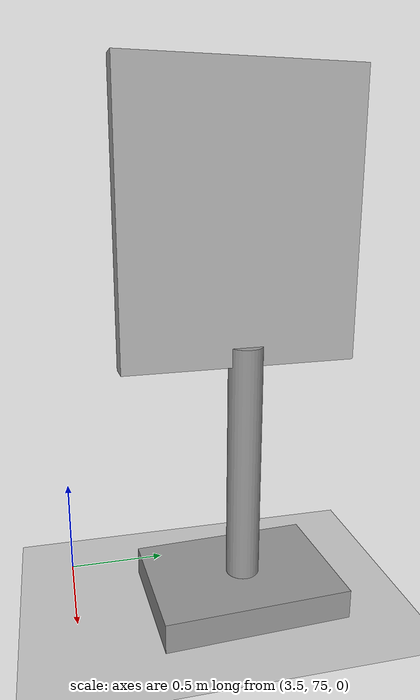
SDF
<sdf version="1.7">
 <world name="default">
  <model name="ground_plane">
   <static>1</static>
   <link name="link">
    <collision name="collision">
     <geometry><plane><normal>0 0 1</normal><size>100 100</size></plane></geometry>
     <surface>
      <contact><collide_bitmask>65535</collide_bitmask></contact>
      <friction><ode><mu>100</mu><mu2>50</mu2></ode></friction>
     </surface>
    </collision>
    <visual name="visual">
     <cast_shadows>0</cast_shadows>
     <geometry><plane><normal>0 0 1</normal><size>100 100</size></plane></geometry>
     <material>
      <script><uri>file://media/materials/scripts/gazebo.material</uri><name>Gazebo/Grey</name></script>
     </material>
    </visual>
   </link>
  </model>
  <model name="Sign_board_stand_4">
   <link name="link_0">
    <inertial>
     <mass>1</mass>
     <inertia>
      <ixx>0.166667</ixx>
      <ixy>0</ixy>
      <ixz>0</ixz>
      <iyy>0.166667</iyy>
      <iyz>0</iyz>
      <izz>0.166667</izz>
     </inertia>
    </inertial>
    <pose>0.012693 -0.016329 -0.964065 1.57085 0.003717 1.58448</pose>
    <visual name="visual">
     <geometry><mesh><uri>model://sign_board_stop/meshes/sign_stand.obj</uri><scale>1 1 1</scale></mesh></geometry>
     <material>
      <lighting>1</lighting>
      <script><uri>file://media/materials/scripts/gazebo.material</uri><name>Gazebo/Grey</name></script>
      <shader type="pixel"/>
      <emissive>0 0 0 1</emissive>
     </material>
    </visual>
    <collision name="collision">
     <geometry><mesh><uri>model://sign_board_stop/meshes/sign_stand.obj</uri><scale>1 1 1</scale></mesh></geometry>
     <surface>
      <friction>
       <ode><mu>1</mu><mu2>1</mu2><fdir1>0 0 0</fdir1><slip1>0</slip1><slip2>0</slip2></ode>
       <torsional>
        <coefficient>1</coefficient>
        <patch_radius>0</patch_radius>
        <surface_radius>0</surface_radius>
        <use_patch_radius>1</use_patch_radius>
        <ode><slip>0</slip></ode>
       </torsional>
      </friction>
      <bounce><restitution_coefficient>0</restitution_coefficient><threshold>1e+06</threshold></bounce>
      <contact>
       <collide_without_contact>0</collide_without_contact>
       <collide_without_contact_bitmask>1</collide_without_contact_bitmask>
       <collide_bitmask>1</collide_bitmask>
       <ode>
        <soft_cfm>0</soft_cfm>
        <soft_erp>0.2</soft_erp>
        <kp>1e+13</kp>
        <kd>1</kd>
        <max_vel>0.01</max_vel>
        <min_depth>0</min_depth>
       </ode>
       <bullet>
        <split_impulse>1</split_impulse>
        <split_impulse_penetration_threshold>-0.01</split_impulse_penetration_threshold>
        <soft_cfm>0</soft_cfm>
        <soft_erp>0.2</soft_erp>
        <kp>1e+13</kp>
        <kd>1</kd>
       </bullet>
      </contact>
     </surface>
    </collision>
   </link>
   <link name="link_1">
    <inertial>
     <mass>1</mass>
     <inertia>
      <ixx>0.166667</ixx>
      <ixy>0</ixy>
      <ixz>0</ixz>
      <iyy>0.166667</iyy>
      <iyz>0</iyz>
      <izz>0.166667</izz>
     </inertia>
    </inertial>
    <pose>-0.012694 0.016329 0.964067 3.14159 1.56059 3.14159</pose>
    <visual name="visual">
     <geometry><mesh><uri>model://sign_board_stop/meshes/sign_board.obj</uri><scale>1 1 1</scale></mesh></geometry>
     <material>
      <script>
       <uri>model://sign_board_stop/materials/scripts</uri>
       <uri>model://sign_board_stop/materials/textures</uri>
       <name>sign_board_stop/Diffuse</name>
      </script>
     </material>
    </visual>
    <collision name="collision">
     <geometry><mesh><uri>model://sign_board_stop/meshes/sign_board.obj</uri><scale>1 1 1</scale></mesh></geometry>
     <surface>
      <friction>
       <ode><mu>1</mu><mu2>1</mu2><fdir1>0 0 0</fdir1><slip1>0</slip1><slip2>0</slip2></ode>
       <torsional>
        <coefficient>1</coefficient>
        <patch_radius>0</patch_radius>
        <surface_radius>0</surface_radius>
        <use_patch_radius>1</use_patch_radius>
        <ode><slip>0</slip></ode>
       </torsional>
      </friction>
      <bounce><restitution_coefficient>0</restitution_coefficient><threshold>1e+06</threshold></bounce>
      <contact>
       <collide_without_contact>0</collide_without_contact>
       <collide_without_contact_bitmask>1</collide_without_contact_bitmask>
       <collide_bitmask>1</collide_bitmask>
       <ode>
        <soft_cfm>0</soft_cfm>
        <soft_erp>0.2</soft_erp>
        <kp>1e+13</kp>
        <kd>1</kd>
        <max_vel>0.01</max_vel>
        <min_depth>0</min_depth>
       </ode>
       <bullet>
        <split_impulse>1</split_impulse>
        <split_impulse_penetration_threshold>-0.01</split_impulse_penetration_threshold>
        <soft_cfm>0</soft_cfm>
        <soft_erp>0.2</soft_erp>
        <kp>1e+13</kp>
        <kd>1</kd>
       </bullet>
      </contact>
     </surface>
    </collision>
   </link>
   <joint name="stand_board_J" type="fixed">
    <parent>link_0</parent>
    <child>link_1</child>
    <physics>
     <ode><limit><cfm>0</cfm><erp>0.2</erp></limit><suspension><cfm>0</cfm><erp>0.2</erp></suspension></ode>
    </physics>
   </joint>
   <static>0</static>
   <pose>3.97096 75.8387 0.964119 0.003717 -3e-06 -3.1064</pose>
  </model>
 </world>
</sdf>
